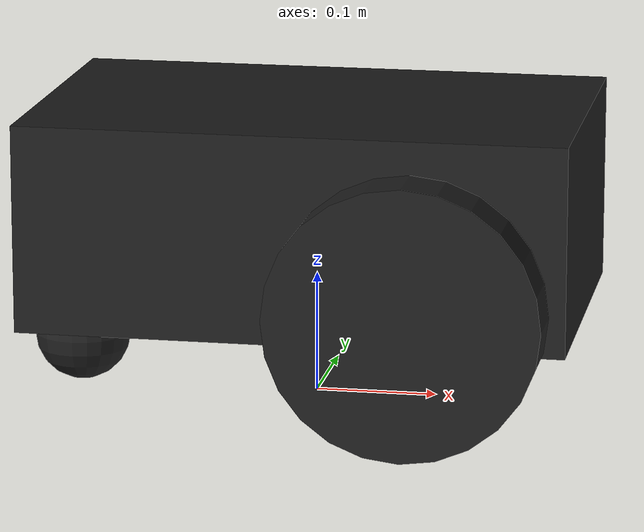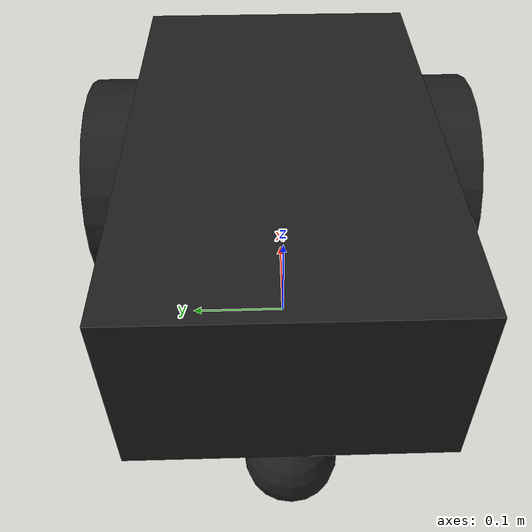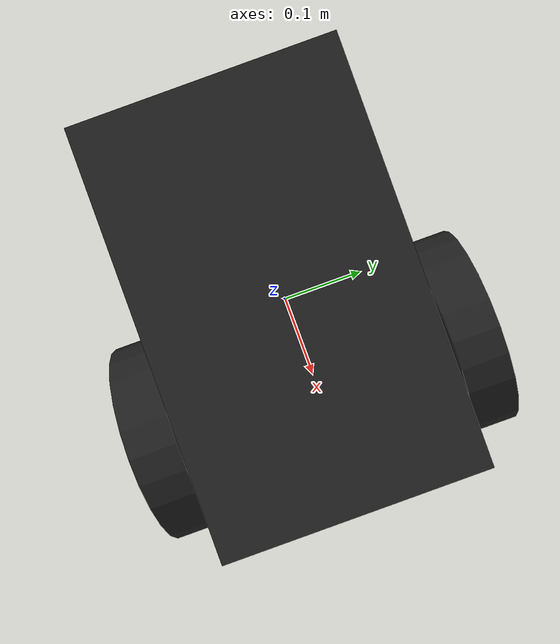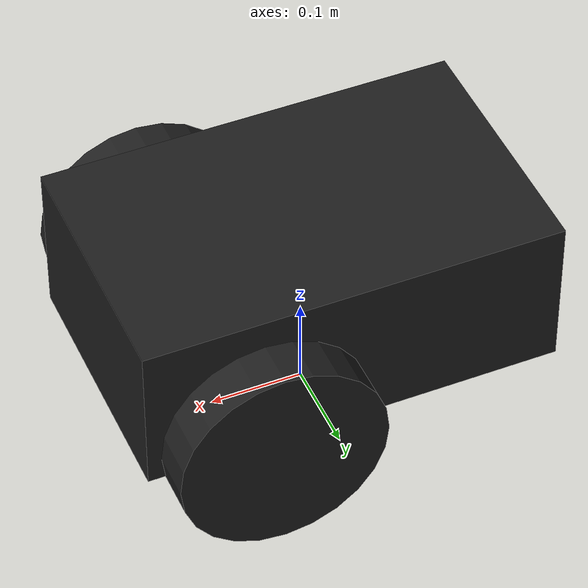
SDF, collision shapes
<?xml version="1.0" ?>
<sdf version="1.5">
  <model name="pioneer2dx">
    <link name="base_link">
      <pose>0 0 0.16 0 0 0</pose>
      <inertial>
        <mass>5.67</mass>
        <inertia>
          <ixx>0.07</ixx>
          <iyy>0.08</iyy>
          <izz>0.10</izz>
          <ixy>0</ixy>
          <ixz>0</ixz>
          <iyz>0</iyz>
        </inertia>
      </inertial>
      <collision name="collision">
        <geometry>
          <box>
            <size>0.445 0.277 0.17</size>
          </box>
        </geometry>
      </collision>
      <collision name="castor_collision">
        <pose>-0.200 0 -0.12 0 0 0</pose>
        <geometry>
          <sphere>
            <radius>0.04</radius>
          </sphere>
        </geometry>
        <surface>
          <friction>
            <ode>
              <mu>0</mu>
              <mu2>0</mu2>
              <slip1>1.0</slip1>
              <slip2>1.0</slip2>
            </ode>
          </friction>
        </surface>
      </collision>
      <visual name="visual">
        <pose>0 0 0.04 0 0 0</pose>
        <geometry>
          <mesh>
            <uri>model://pioneer2dx/meshes/chassis.dae</uri>
          </mesh>
        </geometry>
      </visual>
      <visual name="castor_visual">
        <pose>-0.200 0 -0.12 0 0 0</pose>
        <geometry>
          <sphere>
            <radius>0.04</radius>
          </sphere>
        </geometry>
        <material>
          <script>
            <uri>file://media/materials/scripts/gazebo.material</uri>
            <name>Gazebo/FlatBlack</name>
          </script>
        </material>
      </visual>
    </link>

    <link name="right_wheel">
      <pose>0.1 -.17 0.11 0 1.5707 1.5707</pose>
      <inertial>
        <mass>1.5</mass>
        <inertia>
          <ixx>0.0051</ixx>
          <iyy>0.0051</iyy>
          <izz>0.0090</izz>
          <ixy>0</ixy>
          <ixz>0</ixz>
          <iyz>0</iyz>
        </inertia>
      </inertial>
      <collision name="collision">
        <geometry>
          <cylinder>
            <radius>0.11</radius>
            <length>0.05</length>
          </cylinder>
        </geometry>
        <surface>
          <friction>
            <ode>
              <mu>100000.0</mu>
              <mu2>100000.0</mu2>
              <slip1>0.0</slip1>
              <slip2>0.0</slip2>
            </ode>
          </friction>
        </surface>
      </collision>
      <visual name="visual">
        <geometry>
          <cylinder>
            <radius>0.11</radius>
            <length>0.05</length>
          </cylinder>
        </geometry>
        <material>
          <script>
            <uri>file://media/materials/scripts/gazebo.material</uri>
            <name>Gazebo/FlatBlack</name>
          </script>
        </material>
      </visual>
    </link>

    <link name="left_wheel">
      <pose>0.1 .17 0.11 0 1.5707 1.5707</pose>
      <inertial>
        <mass>1.5</mass>
        <inertia>
          <ixx>0.0051</ixx>
          <iyy>0.0051</iyy>
          <izz>0.0090</izz>
          <ixy>0</ixy>
          <ixz>0</ixz>
          <iyz>0</iyz>
        </inertia>
      </inertial>
      <collision name="collision">
        <geometry>
          <cylinder>
            <radius>0.11</radius>
            <length>0.05</length>
          </cylinder>
        </geometry>
        <surface>
          <friction>
            <ode>
              <mu>100000.0</mu>
              <mu2>100000.0</mu2>
              <slip1>0.0</slip1>
              <slip2>0.0</slip2>
            </ode>
          </friction>
        </surface>
      </collision>
      <visual name="visual">
        <geometry>
          <cylinder>
            <radius>0.11</radius>
            <length>0.05</length>
          </cylinder>
        </geometry>
        <material>
          <script>
            <uri>file://media/materials/scripts/gazebo.material</uri>
            <name>Gazebo/FlatBlack</name>
          </script>
        </material>
      </visual>
    </link>

    <joint type="revolute" name="left_wheel_hinge">
      <pose>0 0 -0.03 0 0 0</pose>
      <child>left_wheel</child>
      <parent>base_link</parent>
      <axis>
        <xyz>0 1 0</xyz>
        <use_parent_model_frame>true</use_parent_model_frame>
      </axis>
    </joint>

    <joint type="revolute" name="right_wheel_hinge">
      <pose>0 0 0.03 0 0 0</pose>
      <child>right_wheel</child>
      <parent>base_link</parent>
      <axis>
        <xyz>0 1 0</xyz>
        <use_parent_model_frame>true</use_parent_model_frame>
      </axis>
    </joint>

    <link name="imu_link">
      <pose>0 0 0 0 0 0</pose>
      <visual name="visual">
	<geometry>
	  <box>
	    <size>0.01 0.01 0.01</size>
	  </box>
	</geometry>
      </visual>
      <collision name="collision">
	<geometry>
	  <box>
	    <size>0.01 0.01 0.01</size>
	  </box>
	</geometry>
      </collision>

      <sensor name="imu_sensor" type="imu">
        <always_on>1</always_on>
        <update_rate>50</update_rate>
        <imu>
          <enable_orientation>0</enable_orientation>
          <angular_velocity>
            <x>
              <noise type="gaussian">
                <mean>0</mean>
                <stddev>0.009</stddev>
                <bias_mean>0.00075</bias_mean>
                <bias_stddev>0.005</bias_stddev>
                <dynamic_bias_stddev>0.00002</dynamic_bias_stddev>
                <dynamic_bias_correlation_time>400.0</dynamic_bias_correlation_time>
                <precision>0.00025</precision>
              </noise>
            </x>
            <y>
              <noise type="gaussian">
                <mean>0</mean>
                <stddev>0.009</stddev>
                <bias_mean>0.00075</bias_mean>
                <bias_stddev>0.005</bias_stddev>
                <dynamic_bias_stddev>0.00002</dynamic_bias_stddev>
                <dynamic_bias_correlation_time>400.0</dynamic_bias_correlation_time>
                <precision>0.00025</precision>
              </noise>
            </y>
            <z>
              <noise type="gaussian">
                <mean>0</mean>
                <stddev>0.009</stddev>
                <bias_mean>0.00075</bias_mean>
                <bias_stddev>0.005</bias_stddev>
                <dynamic_bias_stddev>0.00002</dynamic_bias_stddev>
                <dynamic_bias_correlation_time>400.0</dynamic_bias_correlation_time>
                <precision>0.00025</precision>
              </noise>
            </z>
          </angular_velocity>
          <linear_acceleration>
            <x>
              <noise type="gaussian">
                <mean>0</mean>
                <stddev>0.021</stddev>
                <bias_mean>0.05</bias_mean>
                <bias_stddev>0.0075</bias_stddev>
                <dynamic_bias_stddev>0.000375</dynamic_bias_stddev>
                <dynamic_bias_correlation_time>175.0</dynamic_bias_correlation_time>
                <precision>0.005</precision>
              </noise>
            </x>
            <y>
              <noise type="gaussian">
                <mean>0</mean>
                <stddev>0.021</stddev>
                <bias_mean>0.05</bias_mean>
                <bias_stddev>0.0075</bias_stddev>
                <dynamic_bias_stddev>0.000375</dynamic_bias_stddev>
                <dynamic_bias_correlation_time>175.0</dynamic_bias_correlation_time>
                <precision>0.005</precision>
              </noise>
            </y>
            <z>
              <noise type="gaussian">
                <mean>0</mean>
                <stddev>0.021</stddev>
                <bias_mean>0.05</bias_mean>
                <bias_stddev>0.0075</bias_stddev>
                <dynamic_bias_stddev>0.000375</dynamic_bias_stddev>
                <dynamic_bias_correlation_time>175.0</dynamic_bias_correlation_time>
                <precision>0.005</precision>
              </noise>
            </z>
          </linear_acceleration>
        </imu>

	<plugin name='imu' filename='libgazebo_ros_imu_sensor.so'>
	  <ros>
	    <!-- publish to /imu/data -->
	    <namespace>/p2dx</namespace>
	    <remapping>~/out:=imu</remapping>
	    <output_type>sensor_msgs/Imu</output_type>
	  </ros>
	</plugin>
      </sensor>

    </link>

    <joint type="fixed" name="imu_joint">
      <parent>base_link</parent>
      <child>imu_link</child>
      <pose>0 0 0.01 0 0 0"</pose>
    </joint>

    <plugin name="skid_steer_drive" filename="libgazebo_ros_diff_drive.so">

      <ros>
        <namespace>/p2dx</namespace>
      </ros>

      <updateRate>100.0</updateRate>

      <num_wheel_pairs>1</num_wheel_pairs>

      <right_joint>right_wheel_hinge</right_joint>
      <left_joint>left_wheel_hinge</left_joint>

      <wheel_separation>0.34</wheel_separation>
      <wheel_diameter>0.2</wheel_diameter>

      <!-- limits -->
      <max_wheel_torque>35</max_wheel_torque>
      <max_wheel_acceleration>0.5</max_wheel_acceleration>

      <!-- output -->
      <publish_odom>true</publish_odom>
      <publish_odom_tf>true</publish_odom_tf>
      <publish_wheel_tf>true</publish_wheel_tf>

    </plugin>

  </model>
</sdf>
